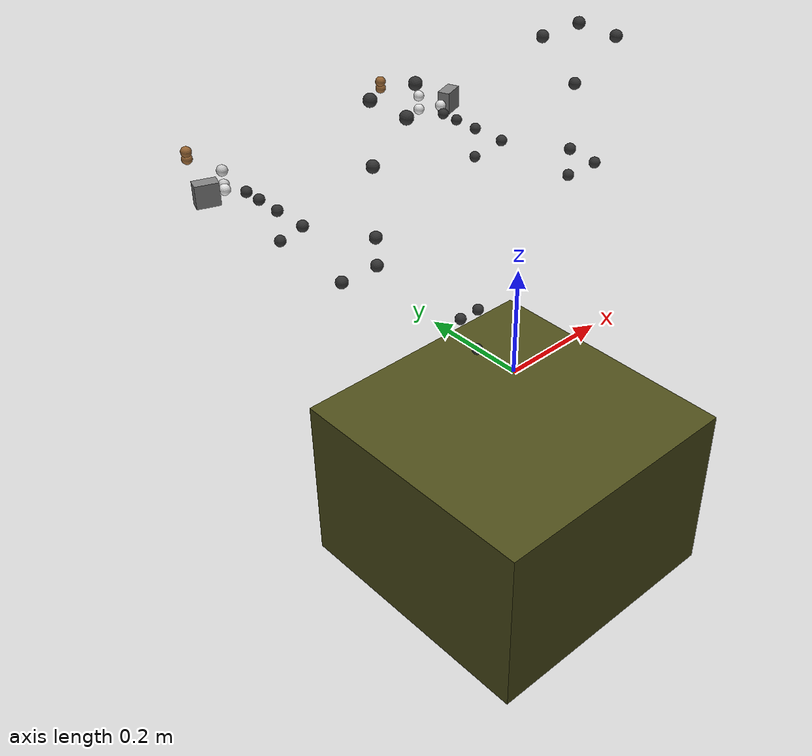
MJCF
<mujoco model="val">
    <compiler angle="radian" inertiafromgeom="true"/>
    <option viscosity="1" timestep="0.001" solver="CG"/>
    <default>
        <geom solref="0.002 1" size="0.01"/>
    </default>
    <size njmax="500" nconmax="100"/>
    <visual>
        <scale framewidth="0.02" framelength="0.2"/>
    </visual>
    <worldbody>
        <body pos="0 0 0" name="val_base">
            <body pos="0 0 -0.26" euler="0 0 0" name="stand">
                <geom type="box" name="stand" size="0.25 0.25 0.17" rgba="0.3 0.3 0.1 1"/>
            </body>
            <body name="pedestal" pos="0 0 0" euler="-1.5707 0 0">
                <body pos="0 0 0.0891" euler="-1.5707 0 0" name="drive56">
                    <geom type="sphere" rgba="0.2 0.2 0.2 1"/>
                    <body name="drive57" pos="0 0 -0.082642" euler="1.5707 1.5707 0">
                        <joint name="joint56" type="hinge" pos="0 0 0" axis="0 -1 0" limited="true" range="-6.2 6.2"
                               damping="200"
                               frictionloss="0.01"/>
                        <geom type="sphere" rgba="0.2 0.2 0.2 1"/>
                        <body name="torso" pos="0 0 -0.04085" quat="0.5 0.5 -0.5 0.5">
                            <joint name="joint57" type="hinge" pos="0 0 0" axis="-1 0 0" limited="true" range="-1.5708 1.5708"
                                   damping="100"
                                   frictionloss="0.01"/>
                            <geom type="sphere" rgba="0.2 0.2 0.2 1"/>
                            <body pos="-0.092094 0 0.44399" quat="0.5 -0.5 0.5 -0.5" name="drive1">
                                <geom type="sphere" rgba="0.2 0.2 0.2 1"/>
                            </body>
                            <body pos="0.167906 0 0.44399" quat="0.5 -0.5 -0.5 0.5" name="drive41">
                                <geom type="sphere" rgba="0.2 0.2 0.2 1"/>
                            </body>
                            <body name="drive42" pos="-0.174736 0 0.44399" quat="0.5 -0.5 -0.5 -0.5">
                                <joint name="joint41" type="hinge" pos="0 0 0" axis="0 1 0" limited="true" range="-6.2 6.2"
                                       damping="20"
                                       frictionloss="1"/>
                                <geom type="sphere" rgba="0.2 0.2 0.2 1"/>
                                <body name="leftshoulder" pos="0 0 -0.07526" quat="0.707107 0 0 -0.707107">
                                    <joint name="joint42" type="hinge" pos="0 0 0" axis="0 0 1" limited="true" range="-0.15 3.14159"
                                           damping="8"
                                           frictionloss="1"/>
                                    <geom type="sphere" name="left_shoulder_bracket"
                                          rgba="0.2 0.2 0.2 1"/>
                                    <body pos="0 -0.1 0.07526" quat="0.707107 -0.707107 0 0" name="drive43">
                                        <geom type="sphere" rgba="0.2 0.2 0.2 1"/>
                                    </body>
                                    <body name="lefttube_and_drive" pos="0 -0.215888 0.07526" quat="-0.707107 -0.707107 0 0">
                                        <joint name="joint43" type="hinge" pos="0 0 0" axis="0 0 -1" limited="true"
                                               range="-6.2 6.2" damping="8"
                                               frictionloss="1"/>
                                        <body quat="0.707107 0 0.707107 0" name="lefttube">
                                            <geom type="sphere" rgba="0.2 0.2 0.2 1"/>
                                        </body>
                                        <body pos="0 0 0.0486304" quat="0.5 -0.5 -0.5 0.5" name="drive44">
                                            <geom type="sphere" rgba="0.2 0.2 0.2 1"/>
                                        </body>
                                        <body name="leftforearm" pos="0.06758 0 0.0486304" quat="0 -0.707107 0 0.707107">
                                            <joint name="joint44" type="hinge" pos="0 0 0" axis="0 0 1" limited="true"
                                                   range="-4 1.0"
                                                   damping="8" frictionloss="1"/>
                                            <geom type="sphere" name="left_forearm_bracket"
                                                  rgba="0.2 0.2 0.2 1"/>
                                            <body pos="0 -0.17 0.05749" quat="0.707107 -0.707107 0 0" name="drive45">
                                                <geom type="sphere" rgba="0.2 0.2 0.2 1"/>
                                            </body>
                                            <body name="drive46" pos="0 -0.237262 0.05749" quat="0.707107 0 0.707107 0">
                                                <joint name="joint45" type="hinge" pos="0 0 0" axis="0 1 0" limited="true"
                                                       range="-6.2 6.2"
                                                       damping="0.4" frictionloss="0.01"/>
                                                <geom type="sphere" rgba="0.2 0.2 0.2 1"/>
                                                <body name="leftwrist" pos="0 0 -0.0566728">
                                                    <joint name="joint46" type="hinge" pos="0 0 0" axis="0 0 -1" limited="true"
                                                           range="-1.5708 1.5708" damping="0.04" frictionloss="0.1"/>
                                                    <geom type="sphere" name="left_wrist"
                                                          rgba="0.2 0.2 0.2 1"/>
                                                    <body pos="0 -0.05 0.0566728" quat="0.707107 -0.707107 0 0"
                                                          name="drive47">
                                                        <geom type="sphere" name="drive47"
                                                              rgba="0.2 0.2 0.2 1"/>
                                                    </body>
                                                    <body name="drive50" pos="0 -0.086 0.0566728" quat="0 0 0.707107 -0.707107">
                                                        <joint name="joint47" type="hinge" pos="0 0 0" axis="0 0 -1"
                                                               limited="true" range="-6.2 6.2"
                                                               damping="0.08" frictionloss="0.1"/>
                                                        <geom type="sphere" name="drive47_housing"
                                                              rgba="0.2 0.2 0.2 1"/>
                                                        <site name="left_tool" pos="0 0 0.181" size="0.001"/>
                                                        <body name="left_d405_mount" pos="-0.0215 0 0.031" euler="1.5707 -1.5707 0">
                                                            <geom type="sphere" name="left_d405_mount"
                                                                  rgba="0.9 0.9 0.9 1"/>
                                                            <body name="left_d405" euler="1.22 0 0" pos="0 0.01 0.03">
                                                                <camera mode="fixed" name="left_hand"/>
                                                                <geom name="left_d405" type="box" size="0.021 0.021 0.0115"/>
                                                            </body>
                                                            <!-- The default camera frame is weird, so we use this site instead -->
                                                            <site name="left_hand_cam" euler="1.22 3.14159 3.14159" pos="0 0.01 0.03"
                                                                  size="0.001"/>
                                                        </body>
                                                        <body name="leftgripper" pos="0 0.0135 0.068553"
                                                              euler="1.15 -1.5707 0">
                                                            <joint name="leftgripper" type="hinge" axis="0 0 1" limited="true"
                                                                   range="-0.11 1"
                                                                   damping="0.1" frictionloss="0.01"/>
                                                            <geom type="sphere" friction="0.00001"
                                                                  rgba="0.8 0.8 0.8 1"/>
                                                            <body name="left_finger_pad" pos="0.052 0.1 0">
                                                                <geom type="sphere" name="left_finger_pad"
                                                                      rgba="0.6 0.4 0.2 1"/>
                                                            </body>
                                                        </body>
                                                        <body name="leftgripper2" pos="0 -0.0135 0.068553"
                                                              euler="1.99 1.5707 0">
                                                            <joint name="leftgripper2" type="hinge" axis="0 0 1" limited="true"
                                                                   range="-0.11 1"
                                                                   damping="0.1" frictionloss="0.01"/>
                                                            <geom type="sphere" name="leftgripper2"
                                                                  friction="0.00001"
                                                                  rgba="0.8 0.8 0.8 1"/>
                                                            <body name="left_finger_pad2" pos="0.052 0.1 0">
                                                                <geom type="sphere" name="left_finger_pad2"
                                                                      rgba="0.6 0.4 0.2 1"/>
                                                            </body>
                                                        </body>
                                                    </body>
                                                </body>
                                            </body>
                                        </body>
                                    </body>
                                </body>
                            </body>
                            <body name="drive2" pos="0.250548 0 0.44399" quat="0.5 -0.5 0.5 0.5">
                                <joint name="joint1" type="hinge" pos="0 0 0" axis="0 -1 0" limited="true" range="-6.2 6.2"
                                       damping="20"
                                       frictionloss="1"/>
                                <geom type="sphere" rgba="0.2 0.2 0.2 1"/>
                                <body name="rightshoulder" pos="0 0 -0.07526" quat="0.707107 0 0 0.707107">
                                    <joint name="joint2" type="hinge" pos="0 0 0" axis="0 0 1" limited="true" range="-3.14159 0.15"
                                           damping="8"
                                           frictionloss="1"/>
                                    <geom type="sphere" name="right_shoulder_bracket"
                                          rgba="0.2 0.2 0.2 1"/>
                                    <body pos="0 -0.1 0.07526" quat="0.707107 -0.707107 0 0" name="drive3">
                                        <geom type="sphere" rgba="0.2 0.2 0.2 1"/>
                                    </body>
                                    <body name="righttube_and_drive" pos="0 -0.215888 0.07526" quat="0 0 -0.707107 0.707107">
                                        <joint name="joint3" type="hinge" pos="0 0 0" axis="0 0 -1" limited="true"
                                               range="-6.2 6.2" damping="8"
                                               frictionloss="1"/>
                                        <body quat="0.707107 0 0.707107 0" name="righttube">
                                            <geom type="sphere" rgba="0.2 0.2 0.2 1"/>
                                        </body>
                                        <body pos="0 0 0.0486304" quat="0.5 -0.5 -0.5 0.5" name="drive4">
                                            <geom type="sphere" rgba="0.2 0.2 0.2 1"/>
                                        </body>
                                        <body name="rightforearm" pos="0.06758 0 0.0486304" quat="0.707107 0 -0.707107 0">
                                            <joint name="joint4" type="hinge" pos="0 0 0" axis="0 0 -1" limited="true"
                                                   range="-4 1.0"
                                                   damping="8" frictionloss="1"/>
                                            <geom type="sphere" name="right_forearm_bracket"
                                                  rgba="0.2 0.2 0.2 1"/>
                                            <body pos="0 -0.17 0.05749" quat="0.707107 -0.707107 0 0" name="drive5">
                                                <geom type="sphere" rgba="0.2 0.2 0.2 1"/>
                                            </body>
                                            <body name="drive6" pos="0 -0.237262 0.05749" quat="0.707107 0 -0.707107 0">
                                                <joint name="joint5" type="hinge" pos="0 0 0" axis="0 1 0" limited="true"
                                                       range="-6.2 6.2"
                                                       damping="0.4" frictionloss="0.01"/>
                                                <geom type="sphere" rgba="0.2 0.2 0.2 1"/>
                                                <body name="rightwrist" pos="0 0 -0.0566728">
                                                    <joint name="joint6" type="hinge" pos="0 0 0" axis="0 0 -1" limited="true"
                                                           range="-1.5708 1.5708" damping="0.04" frictionloss="0.1"/>
                                                    <geom type="sphere" name="rightwrist"
                                                          rgba="0.2 0.2 0.2 1"/>
                                                    <body pos="0 -0.05 0.0566728" quat="0.707107 -0.707107 0 0"
                                                          name="drive7">
                                                        <geom type="sphere" name="drive7"
                                                              rgba="0.2 0.2 0.2 1"/>
                                                    </body>
                                                    <body name="drive10" pos="0 -0.086 0.0566728" quat="0.707107 0.707107 0 0">
                                                        <joint name="joint7" type="hinge" pos="0 0 0" axis="0 0 -1"
                                                               limited="true" range="-6.2 6.2"
                                                               damping=".08" frictionloss="0.1"/>
                                                        <geom type="sphere" name="drive7_housing"
                                                              rgba="0.2 0.2 0.2 1"/>
                                                        <site name="right_tool" pos="0 0 0.181" size="0.001"/>
                                                        <body name="right_d405_mount" pos="-0.0215 0 0.031" euler="1.5707 -1.5707 0">
                                                            <geom type="sphere" name="right_d405_mount"
                                                                  rgba="0.9 0.9 0.9 1"/>
                                                            <body name="right_d405" euler="1.22 0 0" pos="0 0.01 0.03">
                                                                <geom name="right_d405" type="box" size="0.021 0.021 0.0115"/>
                                                                <camera mode="fixed" name="right_hand"/>
                                                            </body>
                                                            <!-- The default camera frame is weird, so we use this site instead -->
                                                            <site name="right_hand_cam" euler="-1.93 0 3.1415" pos="0.01 0 0.03"
                                                                  size="0.001"/>
                                                        </body>

                                                        <body name="rightgripper" pos="0 0.0135 0.068553"
                                                              euler="1.15 -1.5707 0">
                                                            <joint name="rightgripper" type="hinge" axis="0 0 1" limited="true"
                                                                   range="-0.11 1"
                                                                   damping="0.1" frictionloss="0.01"/>
                                                            <geom type="sphere" name="rightgripper"
                                                                  friction="0.00001"
                                                                  rgba="0.9 0.9 0.9 1"/>
                                                            <body name="right_finger_pad" pos="0.052 0.1 0">
                                                                <geom type="sphere" name="right_finger_pad"
                                                                      rgba="0.6 0.4 0.2 1"/>
                                                            </body>
                                                        </body>
                                                        <body name="rightgripper2" pos="0 -0.0135 0.068553"
                                                              euler="1.99 1.5707 0">
                                                            <joint name="rightgripper2" type="hinge" axis="0 0 1" limited="true"
                                                                   range="-0.11 1"
                                                                   damping="0.1" frictionloss="0.01"/>
                                                            <geom type="sphere" name="rightgripper2"
                                                                  friction="0.00001"
                                                                  rgba="0.9 0.9 0.9 1"/>
                                                            <body name="right_finger_pad2" pos="0.052 0.1 0">
                                                                <geom type="sphere" name="right_finger_pad2"
                                                                      rgba="0.6 0.4 0.2 1"/>
                                                            </body>
                                                        </body>
                                                    </body>
                                                </body>
                                            </body>
                                        </body>
                                    </body>
                                </body>
                            </body>
                        </body>
                    </body>
                </body>
            </body>
        </body>
    </worldbody>
    <actuator>
        <intvelocity name="joint56_vel" joint="joint56" ctrllimited="true" ctrlrange="-0.45 0.45" actrange="-6.2 6.2" kp="5000"
                     forcelimited="true" forcerange="-50 50"/>
        <intvelocity name="joint57_vel" joint="joint57" ctrllimited="true" ctrlrange="-0.45 0.45" actrange="-1.5708 1.5708" kp="20000"
                     forcelimited="true" forcerange="-55 55"/>

        <intvelocity name="joint41_vel" joint="joint41" ctrllimited="true" ctrlrange="-0.45 0.45" actrange="-6.2 6.2" kp="10000"
                     forcelimited="true" forcerange="-15 15"/>
        <intvelocity name="joint42_vel" joint="joint42" ctrllimited="true" ctrlrange="-0.45 0.45" actrange="-0.15 3.14159" kp="5000"
                     forcelimited="true" forcerange="-15 15"/>
        <intvelocity name="joint43_vel" joint="joint43" ctrllimited="true" ctrlrange="-0.45 0.45" actrange="-6.2 6.2" kp="5000"
                     forcelimited="true" forcerange="-10 10"/>
        <intvelocity name="joint44_vel" joint="joint44" ctrllimited="true" ctrlrange="-0.45 0.45" actrange="-4 1.0" kp="1000"
                     forcelimited="true" forcerange="-10 10"/>
        <intvelocity name="joint45_vel" joint="joint45" ctrllimited="true" ctrlrange="-2 2" actrange="-6.2 6.2" kp="100" forcelimited="true"
                     forcerange="-8 8"/>
        <intvelocity name="joint46_vel" joint="joint46" ctrllimited="true" ctrlrange="-2 2" actrange="-1.5708 1.5708" kp="500"
                     forcelimited="true" forcerange="-4 4"/>
        <intvelocity name="joint47_vel" joint="joint47" ctrllimited="true" ctrlrange="-3.1 3.1" actrange="-6.2 6.2" kp="50"
                     forcelimited="true" forcerange="-3 3"/>
        <intvelocity name="leftgripper_vel" joint="leftgripper" ctrllimited="true" ctrlrange="-0.5 0.5" actrange="-0.11 1" kp="25"
                     forcelimited="true" forcerange="-1 1"/>

        <intvelocity name="joint1_vel" joint="joint1" ctrllimited="true" ctrlrange="-0.45 0.45" actrange="-6.2 6.2" kp="10000"
                     forcelimited="true" forcerange="-15 15"/>
        <intvelocity name="joint2_vel" joint="joint2" ctrllimited="true" ctrlrange="-0.45 0.45" actrange="-3.14159 0.15" kp="5000"
                     forcelimited="true" forcerange="-15 15"/>
        <intvelocity name="joint3_vel" joint="joint3" ctrllimited="true" ctrlrange="-0.45 0.45" actrange="-6.2 6.2" kp="5000"
                     forcelimited="true" forcerange="-10 10"/>
        <intvelocity name="joint4_vel" joint="joint4" ctrllimited="true" ctrlrange="-0.45 0.45" actrange="-4 1.0" kp="1000"
                     forcelimited="true" forcerange="-8 8"/>
        <intvelocity name="joint5_vel" joint="joint5" ctrllimited="true" ctrlrange="-2 2" actrange="-6.2 6.2" kp="100" forcelimited="true"
                     forcerange="-8 8"/>
        <intvelocity name="joint6_vel" joint="joint6" ctrllimited="true" ctrlrange="-2 2" actrange="-1.5708 1.5708" kp="500"
                     forcelimited="true" forcerange="-4 4"/>
        <intvelocity name="joint7_vel" joint="joint7" ctrllimited="true" ctrlrange="-3.1 3.1" actrange="-6.2 6.2" kp="50"
                     forcelimited="true" forcerange="-3 3"/>
        <intvelocity name="rightgripper_vel" joint="rightgripper" ctrllimited="true" ctrlrange="-0.5 0.5" actrange="-0.11 1" kp="25"
                     forcelimited="true" forcerange="-1 1"/>
    </actuator>
    <equality>
        <joint name="left_mimic" joint1="leftgripper" joint2="leftgripper2" solref="0.01 1"/>
        <joint name="right_mimic" joint1="rightgripper" joint2="rightgripper2" solref="0.01 1"/>
    </equality>
</mujoco>
